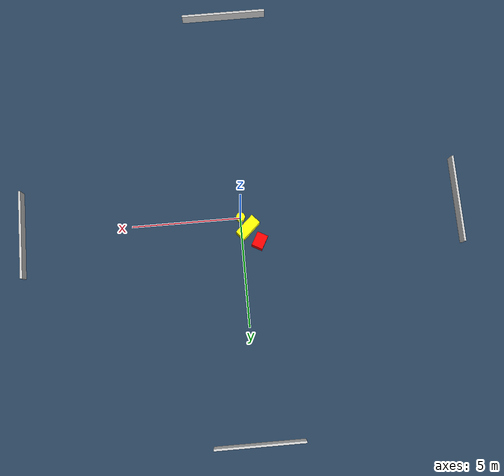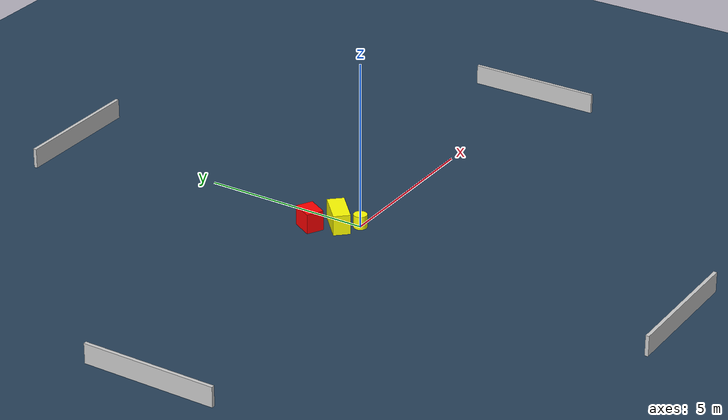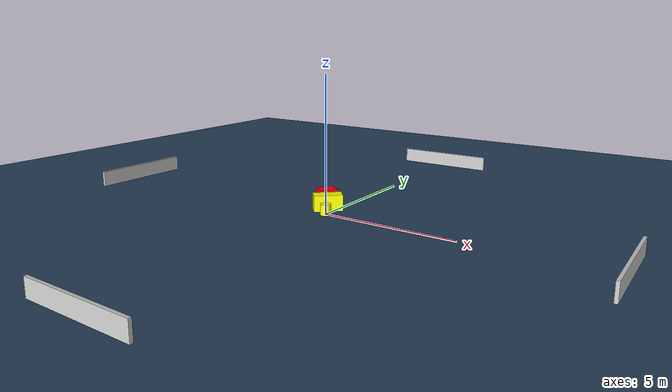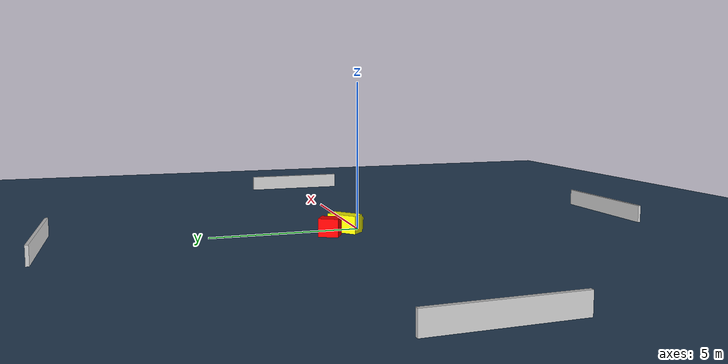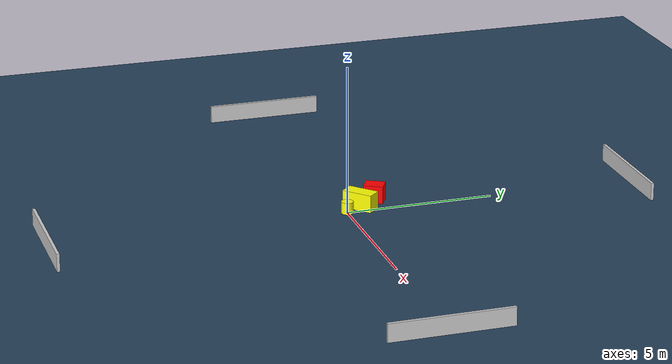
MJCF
<?xml version="1.0" ?>
<mujoco model="generated_environment">
  <option timestep="0.01" integrator="RK4" cone="elliptic"/>
  <default>
    <geom density="1"/>
  </default>
  <asset>
    <texture builtin="gradient" height="3072" name="skybox" rgb1="0.3 0.5 0.7" rgb2="0 0 0" type="skybox" width="512"/>
    <texture builtin="checker" height="300" name="groundplane" rgb1="0.2 0.3 0.4" rgb2="0.1 0.2 0.3" type="2d" width="300"/>
    <material name="groundplane" reflectance="0.2" texrepeat="5 5" texture="groundplane"/>
  </asset>
  <worldbody>
    <light dir="0 0 -1" directional="true" pos="0 0 1.5"/>
    <geom condim="3" friction="0.5 0.005 0.001" material="groundplane" name="floor" pos="0 0 0" size="0 0 0.05" type="plane"/>
    <body name="walls">
      <geom name="wall_1" condim="4" pos="-10.0 0.0 0.3" rgba="0.800000011920929 0.800000011920929 0.800000011920929 1.0" size="0.05 2.0 0.3" type="box"/>
      <geom name="wall_2" condim="4" pos="10.0 0.0 0.3" rgba="0.800000011920929 0.800000011920929 0.800000011920929 1.0" size="0.05 2.0 0.3" type="box"/>
      <geom name="wall_3" condim="4" pos="0.0 -10.0 0.3" rgba="0.800000011920929 0.800000011920929 0.800000011920929 1.0" size="2.0 0.05 0.3" type="box"/>
      <geom name="wall_4" condim="4" pos="0.0 10.0 0.3" rgba="0.800000011920929 0.800000011920929 0.800000011920929 1.0" size="2.0 0.05 0.3" type="box"/>
    </body>
    <body name="robot">
      <joint name="joint_x" type="slide" pos="0 0 0" axis="1 0 0"/>
      <joint name="joint_y" type="slide" pos="0 0 0" axis="0 1 0"/>
      <geom name="robot" type="cylinder" pos="0.0 0.0 0.2" size="0.2 0.2 0.0" mass="5.0" friction="1.0 0.005 0.0001" condim="4" rgba="1.0 1.0 0.0 1.0"/>
    </body>
    <body name="obstacle_1_movable">
      <geom name="obstacle_1_movable" condim="4" pos="-0.2891461557923461 0.5388203589275895 0.3" euler="0 0 132.6487998804609" friction="0.0 0.005 0.001" rgba="1.0 1.0 0.0 1.0" size="0.24923293827152876 0.5329422468089589 0.3" type="box" mass="0.1"/>
      <joint type="free"/>
    </body>
    <body name="obstacle_2_static">
      <geom name="obstacle_2_static" condim="4" pos="-0.7753085111956374 1.1914679372381634 0.3" euler="0 0 240.9870107103396" friction="0.0 0.005 0.001" rgba="1.0 0.0 0.0 1.0" size="0.3302317944186599 0.25914470329296235 0.3" type="box"/>
    </body>
  </worldbody>
  <actuator>
    <motor name="actuator_x" joint="joint_x" gear="1" ctrlrange="-1 1"/>
    <motor name="actuator_y" joint="joint_y" gear="1" ctrlrange="-1 1"/>
  </actuator>
</mujoco>
